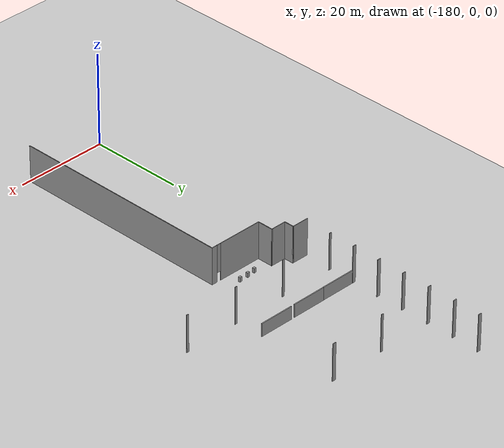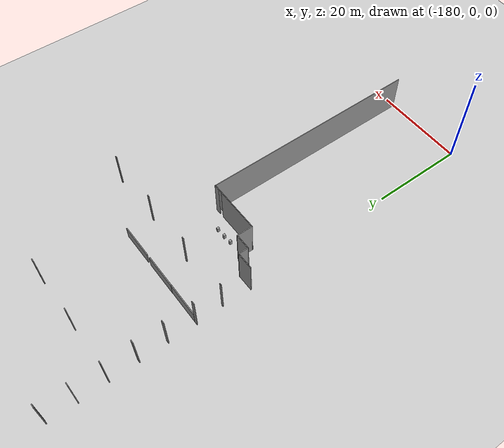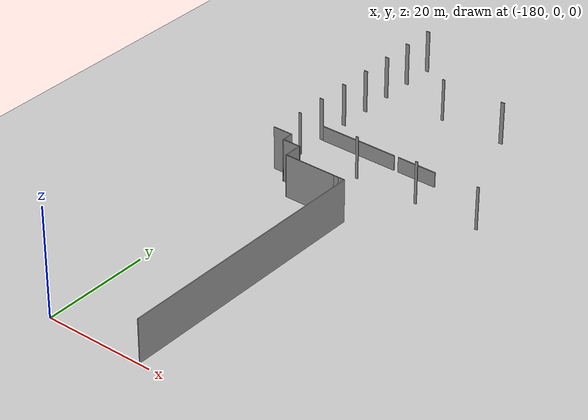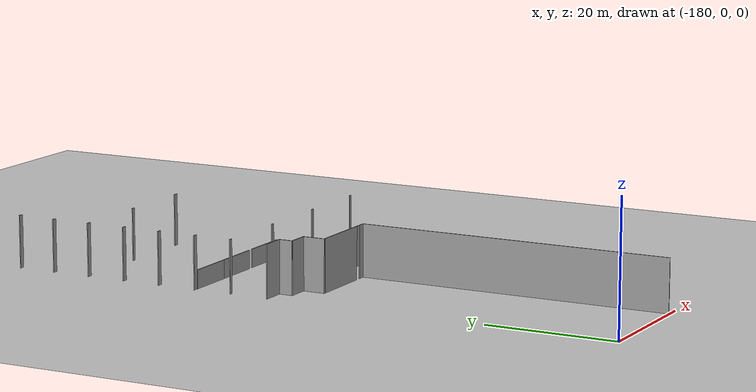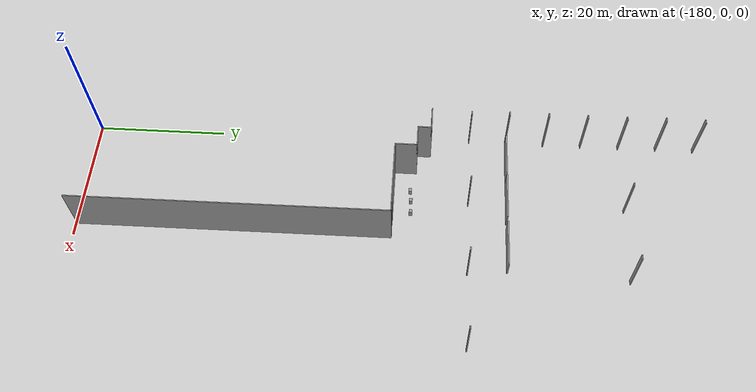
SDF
<sdf version="1.7">
 <world name="default">
  <model name="ground_plane">
   <static>1</static>
   <link name="link">
    <collision name="collision">
     <geometry><plane><normal>0 0 1</normal><size>100 100</size></plane></geometry>
     <surface><friction><ode><mu>100</mu><mu2>50</mu2></ode></friction></surface>
    </collision>
    <visual name="visual">
     <cast_shadows>0</cast_shadows>
     <geometry><plane><normal>0 0 1</normal><size>100 100</size></plane></geometry>
     <material>
      <script><uri>file://media/materials/scripts/gazebo.material</uri><name>Gazebo/Grey</name></script>
     </material>
    </visual>
   </link>
  </model>
  <model name="grey_wall">
   <static>1</static>
   <link name="link">
    <pose>0 0 1.4 0 -0 0</pose>
    <collision name="collision"><geometry><box><size>7.5 0.2 2.8</size></box></geometry></collision>
    <visual name="visual">
     <cast_shadows>0</cast_shadows>
     <geometry><box><size>7.5 0.2 2.8</size></box></geometry>
     <material>
      <script>
       <uri>model://grey_wall/materials/scripts</uri>
       <uri>model://grey_wall/materials/textures</uri>
       <name>vrc/grey_wall</name>
      </script>
     </material>
    </visual>
   </link>
   <pose>-176.336 65.7978 0 0 -0 0</pose>
  </model>
  <model name="AM_Wall">
   <pose>-90.484 78.0434 0 0 -0 0</pose>
   <link name="Wall_10">
    <collision name="Wall_10_Collision">
     <geometry><box><size>3.517 0.15 8</size></box></geometry>
     <pose>0 0 4 0 -0 0</pose>
    </collision>
    <visual name="Wall_10_Visual">
     <pose>0 0 4 0 -0 0</pose>
     <geometry><box><size>3.517 0.15 8</size></box></geometry>
     <material>
      <script><uri>file://media/materials/scripts/gazebo.material</uri><name>Gazebo/Grey</name></script>
      <ambient>1 1 1 1</ambient>
     </material>
     <meta><layer>0</layer></meta>
    </visual>
    <pose>-83.398 -28.0385 0 0 -0 1.5708</pose>
   </link>
   <link name="Wall_100">
    <collision name="Wall_100_Collision">
     <geometry><box><size>0.5 0.15 8</size></box></geometry>
     <pose>0 0 4 0 -0 0</pose>
    </collision>
    <visual name="Wall_100_Visual">
     <pose>0 0 4 0 -0 0</pose>
     <geometry><box><size>0.5 0.15 8</size></box></geometry>
     <material>
      <script><uri>file://media/materials/scripts/gazebo.material</uri><name>Gazebo/Grey</name></script>
      <ambient>1 1 1 1</ambient>
     </material>
     <meta><layer>0</layer></meta>
    </visual>
    <pose>-65.913 -18.132 0 0 -0 0</pose>
   </link>
   <link name="Wall_102">
    <collision name="Wall_102_Collision">
     <geometry><box><size>0.5 0.15 8</size></box></geometry>
     <pose>0 0 4 0 -0 0</pose>
    </collision>
    <visual name="Wall_102_Visual">
     <pose>0 0 4 0 -0 0</pose>
     <geometry><box><size>0.5 0.15 8</size></box></geometry>
     <material>
      <script><uri>file://media/materials/scripts/gazebo.material</uri><name>Gazebo/Grey</name></script>
      <ambient>1 1 1 1</ambient>
     </material>
     <meta><layer>0</layer></meta>
    </visual>
    <pose>-53.906 -18.109 0 0 -0 0</pose>
   </link>
   <link name="Wall_11">
    <collision name="Wall_11_Collision">
     <geometry><box><size>3.5 0.15 8</size></box></geometry>
     <pose>0 0 4 0 -0 0</pose>
    </collision>
    <visual name="Wall_11_Visual">
     <pose>0 0 4 0 -0 0</pose>
     <geometry><box><size>3.5 0.15 8</size></box></geometry>
     <material>
      <script><uri>file://media/materials/scripts/gazebo.material</uri><name>Gazebo/Grey</name></script>
      <ambient>1 1 1 1</ambient>
     </material>
     <meta><layer>0</layer></meta>
    </visual>
    <pose>-85.073 -26.355 0 0 -0 3.14159</pose>
   </link>
   <link name="Wall_12">
    <collision name="Wall_12_Collision">
     <geometry><box><size>2.25 0.15 8</size></box></geometry>
     <pose>0 0 4 0 -0 0</pose>
    </collision>
    <visual name="Wall_12_Visual">
     <pose>0 0 4 0 -0 0</pose>
     <geometry><box><size>2.25 0.15 8</size></box></geometry>
     <material>
      <script><uri>file://media/materials/scripts/gazebo.material</uri><name>Gazebo/Grey</name></script>
      <ambient>1 1 1 1</ambient>
     </material>
     <meta><layer>0</layer></meta>
    </visual>
    <pose>-86.748 -25.305 0 0 -0 1.5708</pose>
   </link>
   <link name="Wall_126">
    <collision name="Wall_126_Collision">
     <geometry><box><size>0.5 0.15 8</size></box></geometry>
     <pose>0 0 4 0 -0 0</pose>
    </collision>
    <visual name="Wall_126_Visual">
     <pose>0 0 4 0 -0 0</pose>
     <geometry><box><size>0.5 0.15 8</size></box></geometry>
     <material>
      <script><uri>file://media/materials/scripts/gazebo.material</uri><name>Gazebo/Grey</name></script>
      <ambient>1 1 1 1</ambient>
     </material>
     <meta><layer>0</layer></meta>
    </visual>
    <pose>-77.954 5.86801 0 0 -0 0</pose>
   </link>
   <link name="Wall_128">
    <collision name="Wall_128_Collision">
     <geometry><box><size>0.75 0.15 8</size></box></geometry>
     <pose>0 0 4 0 -0 0</pose>
    </collision>
    <visual name="Wall_128_Visual">
     <pose>0 0 4 0 -0 0</pose>
     <geometry><box><size>0.75 0.15 8</size></box></geometry>
     <material>
      <script><uri>file://media/materials/scripts/gazebo.material</uri><name>Gazebo/Grey</name></script>
      <ambient>1 1 1 1</ambient>
     </material>
     <meta><layer>0</layer></meta>
    </visual>
    <pose>-65.814 5.88501 0 0 -0 0</pose>
   </link>
   <link name="Wall_16">
    <collision name="Wall_16_Collision">
     <geometry><box><size>3.75 0.15 8</size></box></geometry>
     <pose>0 0 4 0 -0 0</pose>
    </collision>
    <visual name="Wall_16_Visual">
     <pose>0 0 4 0 -0 0</pose>
     <geometry><box><size>3.75 0.15 8</size></box></geometry>
     <material>
      <script><uri>file://media/materials/scripts/gazebo.material</uri><name>Gazebo/Grey</name></script>
      <ambient>1 1 1 1</ambient>
     </material>
     <meta><layer>0</layer></meta>
    </visual>
    <pose>-88.548 -24.255 0 0 -0 3.14159</pose>
   </link>
   <link name="Wall_186">
    <collision name="Wall_186_Collision">
     <geometry><box><size>0.75 0.15 8</size></box></geometry>
     <pose>0 0 4 0 -0 0</pose>
    </collision>
    <visual name="Wall_186_Visual">
     <pose>0 0 4 0 -0 0</pose>
     <geometry><box><size>0.75 0.15 8</size></box></geometry>
     <material>
      <script><uri>file://media/materials/scripts/gazebo.material</uri><name>Gazebo/Grey</name></script>
      <ambient>1 1 1 1</ambient>
     </material>
     <meta><layer>0</layer></meta>
    </visual>
    <pose>-90.038 17.878 0 0 -0 0</pose>
   </link>
   <link name="Wall_188">
    <collision name="Wall_188_Collision">
     <geometry><box><size>0.75 0.15 8</size></box></geometry>
     <pose>0 0 4 0 -0 0</pose>
    </collision>
    <visual name="Wall_188_Visual">
     <pose>0 0 4 0 -0 0</pose>
     <geometry><box><size>0.75 0.15 8</size></box></geometry>
     <material>
      <script><uri>file://media/materials/scripts/gazebo.material</uri><name>Gazebo/Grey</name></script>
      <ambient>1 1 1 1</ambient>
     </material>
     <meta><layer>0</layer></meta>
    </visual>
    <pose>-90.118 11.924 0 0 -0 0</pose>
   </link>
   <link name="Wall_190">
    <collision name="Wall_190_Collision">
     <geometry><box><size>0.75 0.15 8</size></box></geometry>
     <pose>0 0 4 0 -0 0</pose>
    </collision>
    <visual name="Wall_190_Visual">
     <pose>0 0 4 0 -0 0</pose>
     <geometry><box><size>0.75 0.15 8</size></box></geometry>
     <material>
      <script><uri>file://media/materials/scripts/gazebo.material</uri><name>Gazebo/Grey</name></script>
      <ambient>1 1 1 1</ambient>
     </material>
     <meta><layer>0</layer></meta>
    </visual>
    <pose>-90.058 5.91001 0 0 -0 0</pose>
   </link>
   <link name="Wall_192">
    <collision name="Wall_192_Collision">
     <geometry><box><size>0.75 0.15 8</size></box></geometry>
     <pose>0 0 4 0 -0 0</pose>
    </collision>
    <visual name="Wall_192_Visual">
     <pose>0 0 4 0 -0 0</pose>
     <geometry><box><size>0.75 0.15 8</size></box></geometry>
     <material>
      <script><uri>file://media/materials/scripts/gazebo.material</uri><name>Gazebo/Grey</name></script>
      <ambient>1 1 1 1</ambient>
     </material>
     <meta><layer>0</layer></meta>
    </visual>
    <pose>-90.018 -0.143993 0 0 -0 0</pose>
   </link>
   <link name="Wall_194">
    <collision name="Wall_194_Collision">
     <geometry><box><size>0.75 0.15 8</size></box></geometry>
     <pose>0 0 4 0 -0 0</pose>
    </collision>
    <visual name="Wall_194_Visual">
     <pose>0 0 4 0 -0 0</pose>
     <geometry><box><size>0.75 0.15 8</size></box></geometry>
     <material>
      <script><uri>file://media/materials/scripts/gazebo.material</uri><name>Gazebo/Grey</name></script>
      <ambient>1 1 1 1</ambient>
     </material>
     <meta><layer>0</layer></meta>
    </visual>
    <pose>-89.998 -6.13799 0 0 -0 0</pose>
   </link>
   <link name="Wall_196">
    <collision name="Wall_196_Collision">
     <geometry><box><size>0.75 0.15 8</size></box></geometry>
     <pose>0 0 4 0 -0 0</pose>
    </collision>
    <visual name="Wall_196_Visual">
     <pose>0 0 4 0 -0 0</pose>
     <geometry><box><size>0.75 0.15 8</size></box></geometry>
     <material>
      <script><uri>file://media/materials/scripts/gazebo.material</uri><name>Gazebo/Grey</name></script>
      <ambient>1 1 1 1</ambient>
     </material>
     <meta><layer>0</layer></meta>
    </visual>
    <pose>-90.038 -12.212 0 0 -0 0</pose>
   </link>
   <link name="Wall_6">
    <collision name="Wall_6_Collision">
     <geometry><box><size>48.2329 0.15 8</size></box></geometry>
     <pose>0 0 4 0 -0 0</pose>
    </collision>
    <visual name="Wall_6_Visual">
     <pose>0 0 4 0 -0 0</pose>
     <geometry><box><size>48.2329 0.15 8</size></box></geometry>
     <material>
      <script><uri>file://media/materials/scripts/gazebo.material</uri><name>Gazebo/Grey</name></script>
      <ambient>1 1 1 1</ambient>
     </material>
     <meta><layer>0</layer></meta>
    </visual>
    <pose>-71.548 -53.7635 0 0 -0 -1.5708</pose>
   </link>
   <link name="Wall_9">
    <pose>-77.473 -29.722 0 0 -0 3.14159</pose>
    <visual name="Wall_9_Visual_0">
     <pose>-5.372 0 4 0 -0 0</pose>
     <geometry><box><size>1.256 0.15 8</size></box></geometry>
     <material>
      <script><uri>file://media/materials/scripts/gazebo.material</uri><name>Gazebo/Grey</name></script>
      <ambient>1 1 1 1</ambient>
     </material>
     <meta><layer>0</layer></meta>
    </visual>
    <collision name="Wall_9_Collision_0">
     <geometry><box><size>1.256 0.15 8</size></box></geometry>
     <pose>-5.372 0 4 0 -0 0</pose>
    </collision>
    <visual name="Wall_9_Visual_1">
     <pose>1.078 0 4 0 -0 0</pose>
     <geometry><box><size>9.844 0.15 8</size></box></geometry>
     <material>
      <script><uri>file://media/materials/scripts/gazebo.material</uri><name>Gazebo/Grey</name></script>
      <ambient>1 1 1 1</ambient>
     </material>
     <meta><layer>0</layer></meta>
    </visual>
    <collision name="Wall_9_Collision_1">
     <geometry><box><size>9.844 0.15 8</size></box></geometry>
     <pose>1.078 0 4 0 -0 0</pose>
    </collision>
    <visual name="Wall_9_Visual_2">
     <pose>-4.294 0 5 0 -0 0</pose>
     <geometry><box><size>0.9 0.15 6</size></box></geometry>
     <material>
      <script><uri>file://media/materials/scripts/gazebo.material</uri><name>Gazebo/Grey</name></script>
      <ambient>1 1 1 1</ambient>
     </material>
     <meta><layer>0</layer></meta>
    </visual>
    <collision name="Wall_9_Collision_2">
     <geometry><box><size>0.9 0.15 6</size></box></geometry>
     <pose>-4.294 0 5 0 -0 0</pose>
    </collision>
   </link>
   <link name="Wall_93">
    <collision name="Wall_93_Collision">
     <geometry><box><size>0.5 0.15 8</size></box></geometry>
     <pose>0 0 4 0 -0 0</pose>
    </collision>
    <visual name="Wall_93_Visual">
     <pose>0 0 4 0 -0 0</pose>
     <geometry><box><size>0.5 0.15 8</size></box></geometry>
     <material>
      <script><uri>file://media/materials/scripts/gazebo.material</uri><name>Gazebo/Grey</name></script>
      <ambient>1 1 1 1</ambient>
     </material>
     <meta><layer>0</layer></meta>
    </visual>
    <pose>-89.933 -18.068 0 0 -0 0</pose>
   </link>
   <link name="Wall_95">
    <collision name="Wall_95_Collision">
     <geometry><box><size>0.5 0.15 8</size></box></geometry>
     <pose>0 0 4 0 -0 0</pose>
    </collision>
    <visual name="Wall_95_Visual">
     <pose>0 0 4 0 -0 0</pose>
     <geometry><box><size>0.5 0.15 8</size></box></geometry>
     <material>
      <script><uri>file://media/materials/scripts/gazebo.material</uri><name>Gazebo/Grey</name></script>
      <ambient>1 1 1 1</ambient>
     </material>
     <meta><layer>0</layer></meta>
    </visual>
    <pose>-77.91 -18.122 0 0 -0 0</pose>
   </link>
   <static>1</static>
  </model>
  <model name="grey_wall_clone">
   <static>1</static>
   <link name="link">
    <pose>0 0 1.4 0 -0 0</pose>
    <collision name="collision"><geometry><box><size>7.5 0.2 2.8</size></box></geometry></collision>
    <visual name="visual">
     <cast_shadows>0</cast_shadows>
     <geometry><box><size>7.5 0.2 2.8</size></box></geometry>
     <material>
      <script>
       <uri>model://grey_wall/materials/scripts</uri>
       <uri>model://grey_wall/materials/textures</uri>
       <name>vrc/grey_wall</name>
      </script>
     </material>
    </visual>
   </link>
   <pose>-168.876 65.8247 0 0 -0 0</pose>
  </model>
  <model name="grey_wall_clone_0">
   <static>1</static>
   <link name="link">
    <pose>0 0 1.4 0 -0 0</pose>
    <collision name="collision"><geometry><box><size>7.5 0.2 2.8</size></box></geometry></collision>
    <visual name="visual">
     <cast_shadows>0</cast_shadows>
     <geometry><box><size>7.5 0.2 2.8</size></box></geometry>
     <material>
      <script>
       <uri>model://grey_wall/materials/scripts</uri>
       <uri>model://grey_wall/materials/textures</uri>
       <name>vrc/grey_wall</name>
      </script>
     </material>
    </visual>
   </link>
   <pose>-160.586 65.8569 0 0 -0 0</pose>
  </model>
  <model name="charger">
   <link name="link">
    <inertial>
     <mass>0.252412</mass>
     <inertia>
      <ixx>0.0262063</ixx>
      <ixy>0</ixy>
      <ixz>0</ixz>
      <iyy>0.0264845</iyy>
      <iyz>0</iyz>
      <izz>0.0106221</izz>
     </inertia>
    </inertial>
    <visual name="visual">
     <geometry><box><size>0.509025 0.495865 1</size></box></geometry>
     <material>
      <script><name>Gazebo/Grey</name><uri>file://media/materials/scripts/gazebo.material</uri></script>
      <shader type="pixel"/>
     </material>
    </visual>
    <collision name="collision">
     <geometry><box><size>0.509025 0.495865 1</size></box></geometry>
     <surface>
      <friction>
       <ode><mu>1</mu><mu2>1</mu2><fdir1>0 0 0</fdir1><slip1>0</slip1><slip2>0</slip2></ode>
       <torsional>
        <coefficient>1</coefficient>
        <patch_radius>0</patch_radius>
        <surface_radius>0</surface_radius>
        <use_patch_radius>1</use_patch_radius>
        <ode><slip>0</slip></ode>
       </torsional>
      </friction>
      <bounce><restitution_coefficient>0</restitution_coefficient><threshold>1e+06</threshold></bounce>
      <contact>
       <collide_without_contact>0</collide_without_contact>
       <collide_without_contact_bitmask>1</collide_without_contact_bitmask>
       <collide_bitmask>1</collide_bitmask>
       <ode>
        <soft_cfm>0</soft_cfm>
        <soft_erp>0.2</soft_erp>
        <kp>1e+13</kp>
        <kd>1</kd>
        <max_vel>0.01</max_vel>
        <min_depth>0</min_depth>
       </ode>
       <bullet>
        <split_impulse>1</split_impulse>
        <split_impulse_penetration_threshold>-0.01</split_impulse_penetration_threshold>
        <soft_cfm>0</soft_cfm>
        <soft_erp>0.2</soft_erp>
        <kp>1e+13</kp>
        <kd>1</kd>
       </bullet>
      </contact>
     </surface>
    </collision>
   </link>
   <static>1</static>
   <pose>-166.333 51.1189 0.5 0 -0 0</pose>
  </model>
  <model name="charger_clone">
   <link name="link">
    <inertial>
     <mass>0.252412</mass>
     <inertia>
      <ixx>0.0262063</ixx>
      <ixy>0</ixy>
      <ixz>0</ixz>
      <iyy>0.0264845</iyy>
      <iyz>0</iyz>
      <izz>0.0106221</izz>
     </inertia>
    </inertial>
    <visual name="visual">
     <geometry><box><size>0.509025 0.495865 1</size></box></geometry>
     <material>
      <script><name>Gazebo/Grey</name><uri>file://media/materials/scripts/gazebo.material</uri></script>
      <shader type="pixel"/>
     </material>
    </visual>
    <collision name="collision">
     <geometry><box><size>0.509025 0.495865 1</size></box></geometry>
     <surface>
      <friction>
       <ode><mu>1</mu><mu2>1</mu2><fdir1>0 0 0</fdir1><slip1>0</slip1><slip2>0</slip2></ode>
       <torsional>
        <coefficient>1</coefficient>
        <patch_radius>0</patch_radius>
        <surface_radius>0</surface_radius>
        <use_patch_radius>1</use_patch_radius>
        <ode><slip>0</slip></ode>
       </torsional>
      </friction>
      <bounce><restitution_coefficient>0</restitution_coefficient><threshold>1e+06</threshold></bounce>
      <contact>
       <collide_without_contact>0</collide_without_contact>
       <collide_without_contact_bitmask>1</collide_without_contact_bitmask>
       <collide_bitmask>1</collide_bitmask>
       <ode>
        <soft_cfm>0</soft_cfm>
        <soft_erp>0.2</soft_erp>
        <kp>1e+13</kp>
        <kd>1</kd>
        <max_vel>0.01</max_vel>
        <min_depth>0</min_depth>
       </ode>
       <bullet>
        <split_impulse>1</split_impulse>
        <split_impulse_penetration_threshold>-0.01</split_impulse_penetration_threshold>
        <soft_cfm>0</soft_cfm>
        <soft_erp>0.2</soft_erp>
        <kp>1e+13</kp>
        <kd>1</kd>
       </bullet>
      </contact>
     </surface>
    </collision>
   </link>
   <static>1</static>
   <pose>-168.362 51.0696 0.5 0 -0 0</pose>
  </model>
  <model name="charger_clone_clone">
   <link name="link">
    <inertial>
     <mass>0.252412</mass>
     <inertia>
      <ixx>0.0262063</ixx>
      <ixy>0</ixy>
      <ixz>0</ixz>
      <iyy>0.0264845</iyy>
      <iyz>0</iyz>
      <izz>0.0106221</izz>
     </inertia>
    </inertial>
    <visual name="visual">
     <geometry><box><size>0.509025 0.495865 1</size></box></geometry>
     <material>
      <script><name>Gazebo/Grey</name><uri>file://media/materials/scripts/gazebo.material</uri></script>
      <shader type="pixel"/>
     </material>
    </visual>
    <collision name="collision">
     <geometry><box><size>0.509025 0.495865 1</size></box></geometry>
     <surface>
      <friction>
       <ode><mu>1</mu><mu2>1</mu2><fdir1>0 0 0</fdir1><slip1>0</slip1><slip2>0</slip2></ode>
       <torsional>
        <coefficient>1</coefficient>
        <patch_radius>0</patch_radius>
        <surface_radius>0</surface_radius>
        <use_patch_radius>1</use_patch_radius>
        <ode><slip>0</slip></ode>
       </torsional>
      </friction>
      <bounce><restitution_coefficient>0</restitution_coefficient><threshold>1e+06</threshold></bounce>
      <contact>
       <collide_without_contact>0</collide_without_contact>
       <collide_without_contact_bitmask>1</collide_without_contact_bitmask>
       <collide_bitmask>1</collide_bitmask>
       <ode>
        <soft_cfm>0</soft_cfm>
        <soft_erp>0.2</soft_erp>
        <kp>1e+13</kp>
        <kd>1</kd>
        <max_vel>0.01</max_vel>
        <min_depth>0</min_depth>
       </ode>
       <bullet>
        <split_impulse>1</split_impulse>
        <split_impulse_penetration_threshold>-0.01</split_impulse_penetration_threshold>
        <soft_cfm>0</soft_cfm>
        <soft_erp>0.2</soft_erp>
        <kp>1e+13</kp>
        <kd>1</kd>
       </bullet>
      </contact>
     </surface>
    </collision>
   </link>
   <static>1</static>
   <pose>-170.18 50.9058 0.5 0 -0 0</pose>
  </model>
 </world>
</sdf>
